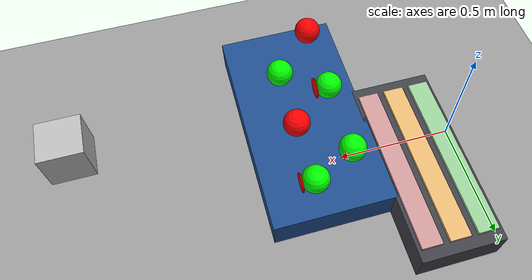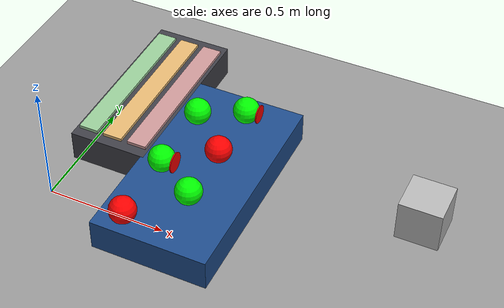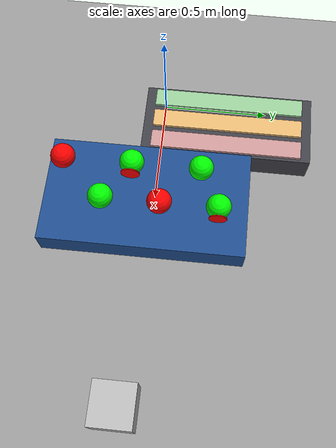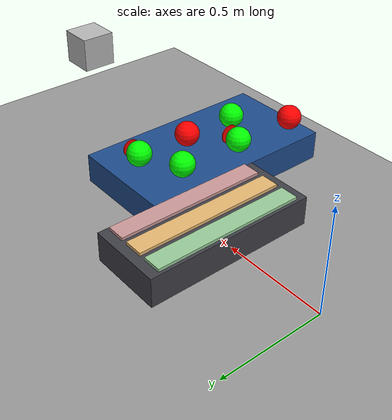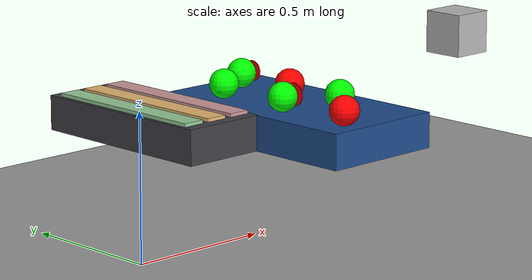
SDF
<?xml version="1.0"?>
<sdf version="1.7">
  <world name="ur5e_apple_rgbd_world">
    <physics name="1ms" type="ignored">
      <max_step_size>0.001</max_step_size>
      <real_time_factor>1.0</real_time_factor>
    </physics>

    <plugin
      filename="ignition-gazebo-physics-system"
      name="gz::sim::systems::Physics"/>

    <plugin
      filename="ignition-gazebo-sensors-system"
      name="gz::sim::systems::Sensors">
      <render_engine>ogre</render_engine>
    </plugin>

    <plugin
      filename="ignition-gazebo-user-commands-system"
      name="gz::sim::systems::UserCommands"/>

    <plugin
      filename="ignition-gazebo-scene-broadcaster-system"
      name="gz::sim::systems::SceneBroadcaster"/>

    <scene>
      <ambient>0.8 0.8 0.8</ambient>
      <background>0.7 0.7 0.7</background>
      <grid>true</grid>
    </scene>

    <gui fullscreen="0">
      <plugin filename="MinimalScene" name="3D View">
        <ignition-gui>
          <title>Apple sorting workstation</title>
          <property type="bool" key="showTitleBar">false</property>
          <property type="string" key="state">docked</property>
        </ignition-gui>
        <engine>ogre</engine>
        <scene>scene</scene>
        <ambient_light>0.8 0.8 0.8</ambient_light>
        <background_color>0.7 0.7 0.7</background_color>
        <camera_pose>-1.4 -1.8 1.5 0 0.45 0.75</camera_pose>
        <camera_clip>
          <near>0.05</near>
          <far>100</far>
        </camera_clip>
      </plugin>

      <plugin filename="GzSceneManager" name="Scene Manager">
        <ignition-gui>
          <property key="state" type="string">floating</property>
          <property key="showTitleBar" type="bool">false</property>
        </ignition-gui>
      </plugin>

      <plugin filename="InteractiveViewControl" name="View control">
        <ignition-gui>
          <property key="state" type="string">floating</property>
          <property key="showTitleBar" type="bool">false</property>
        </ignition-gui>
      </plugin>

      <plugin filename="CameraTracking" name="Camera Tracking">
        <ignition-gui>
          <property key="state" type="string">floating</property>
          <property key="showTitleBar" type="bool">false</property>
        </ignition-gui>
      </plugin>

      <plugin filename="WorldControl" name="World control">
        <ignition-gui>
          <title>World control</title>
          <property type="bool" key="showTitleBar">false</property>
          <property type="bool" key="resizable">false</property>
          <property type="double" key="height">72</property>
          <property type="double" key="width">121</property>
          <property type="string" key="state">floating</property>
          <anchors target="3D View">
            <line own="left" target="left"/>
            <line own="bottom" target="bottom"/>
          </anchors>
        </ignition-gui>
        <play_pause>true</play_pause>
        <step>true</step>
      </plugin>
    </gui>

    <light type="directional" name="sun">
      <pose>0 0 10 0 0 0</pose>
      <diffuse>0.8 0.8 0.8 1</diffuse>
      <specular>0.2 0.2 0.2 1</specular>
      <direction>-0.5 0.1 -0.9</direction>
    </light>

    <model name="ground_plane">
      <static>true</static>
      <pose>0 0 -0.05 0 0 0</pose>

      <link name="link">
        <collision name="collision">
          <geometry>
            <box>
              <size>10 10 0.1</size>
            </box>
          </geometry>
        </collision>

        <visual name="visual">
          <geometry>
            <box>
              <size>10 10 0.1</size>
            </box>
          </geometry>

          <material>
            <ambient>0.6 0.6 0.6 1</ambient>
            <diffuse>0.6 0.6 0.6 1</diffuse>
          </material>
        </visual>
      </link>
    </model>

    <!-- Platform A: compact pick area in front of the UR5e base. -->
    <model name="platform_a_pick_area">
      <static>true</static>
      <pose>0.68 0 0.36 0 0 0</pose>
      <link name="link">
        <collision name="collision">
          <geometry>
            <box>
              <size>0.44 0.82 0.12</size>
            </box>
          </geometry>
        </collision>
        <visual name="visual">
          <geometry>
            <box>
              <size>0.44 0.82 0.12</size>
            </box>
          </geometry>
          <material>
            <ambient>0.12 0.30 0.55 1</ambient>
            <diffuse>0.12 0.30 0.55 1</diffuse>
          </material>
        </visual>
      </link>
    </model>

    <!-- Platform B: sorting area covering the current fixed place poses. -->
    <model name="platform_b_sorting_area">
      <static>true</static>
      <pose>0.32 0.30 0.36 0 0 0</pose>
      <link name="link">
        <collision name="collision">
          <geometry>
            <box>
              <size>0.30 0.70 0.12</size>
            </box>
          </geometry>
        </collision>
        <visual name="base_visual">
          <geometry>
            <box>
              <size>0.30 0.70 0.12</size>
            </box>
          </geometry>
          <material>
            <ambient>0.25 0.25 0.28 1</ambient>
            <diffuse>0.25 0.25 0.28 1</diffuse>
          </material>
        </visual>

        <visual name="ripe_zone">
          <pose>0.10 0 0.066 0 0 0</pose>
          <geometry>
            <box>
              <size>0.075 0.62 0.012</size>
            </box>
          </geometry>
          <material>
            <ambient>0.80 0.60 0.60 1</ambient>
            <diffuse>0.80 0.60 0.60 1</diffuse>
          </material>
        </visual>

        <visual name="half_ripe_zone">
          <pose>0 0 0.066 0 0 0</pose>
          <geometry>
            <box>
              <size>0.075 0.62 0.012</size>
            </box>
          </geometry>
          <material>
            <ambient>0.90 0.72 0.45 1</ambient>
            <diffuse>0.90 0.72 0.45 1</diffuse>
          </material>
        </visual>

        <visual name="unripe_zone">
          <pose>-0.10 0 0.066 0 0 0</pose>
          <geometry>
            <box>
              <size>0.075 0.62 0.012</size>
            </box>
          </geometry>
          <material>
            <ambient>0.60 0.80 0.60 1</ambient>
            <diffuse>0.60 0.80 0.60 1</diffuse>
          </material>
        </visual>
      </link>
    </model>

    <model name="ripe_apple_1">
      <static>false</static>
      <pose>0.56 -0.35 0.47 0 0 0</pose>

      <link name="link">
        <!--
          Keep the dynamic apple at its detection pose while detached.
          The suction joint can still move it after attachment.
        -->
        <gravity>false</gravity>

        <inertial>
          <mass>0.15</mass>
          <inertia>
            <ixx>0.00015</ixx>
            <ixy>0</ixy>
            <ixz>0</ixz>
            <iyy>0.00015</iyy>
            <iyz>0</iyz>
            <izz>0.00015</izz>
          </inertia>
        </inertial>

        <visual name="visual">
          <geometry>
            <sphere>
              <radius>0.05</radius>
            </sphere>
          </geometry>

          <material>
            <ambient>1 0 0 1</ambient>
            <diffuse>1 0 0 1</diffuse>
          </material>
        </visual>
      </link>
    </model>

    <model name="ripe_apple_2">
      <static>false</static>
      <pose>0.72 0.058 0.47 0 0 0</pose>

      <link name="link">
        <gravity>false</gravity>

        <inertial>
          <mass>0.15</mass>
          <inertia>
            <ixx>0.00015</ixx>
            <ixy>0</ixy>
            <ixz>0</ixz>
            <iyy>0.00015</iyy>
            <iyz>0</iyz>
            <izz>0.00015</izz>
          </inertia>
        </inertial>

        <visual name="visual">
          <geometry>
            <sphere>
              <radius>0.05</radius>
            </sphere>
          </geometry>

          <material>
            <ambient>1 0 0 1</ambient>
            <diffuse>1 0 0 1</diffuse>
          </material>
        </visual>
      </link>
    </model>

    <model name="half_ripe_apple_1">
      <static>false</static>
      <pose>0.56 -0.07 0.47 0 0 0</pose>

      <link name="link">
        <gravity>false</gravity>

        <inertial>
          <mass>0.15</mass>
          <inertia>
            <ixx>0.00015</ixx>
            <ixy>0</ixy>
            <ixz>0</ixz>
            <iyy>0.00015</iyy>
            <iyz>0</iyz>
            <izz>0.00015</izz>
          </inertia>
        </inertial>

        <visual name="green_body">
          <geometry>
            <sphere>
              <radius>0.05</radius>
            </sphere>
          </geometry>

          <material>
            <ambient>0 1 0 1</ambient>
            <diffuse>0 1 0 1</diffuse>
          </material>
        </visual>

        <visual name="red_patch">
          <pose>0.052 0 0 0 1.570796 0</pose>
          <geometry>
            <cylinder>
              <radius>0.03873</radius>
              <length>0.004</length>
            </cylinder>
          </geometry>

          <material>
            <ambient>1 0 0 1</ambient>
            <diffuse>1 0 0 1</diffuse>
          </material>
        </visual>
      </link>
    </model>

    <model name="half_ripe_apple_2">
      <static>false</static>
      <pose>0.72 0.292 0.47 0 0 0</pose>

      <link name="link">
        <gravity>false</gravity>

        <inertial>
          <mass>0.15</mass>
          <inertia>
            <ixx>0.00015</ixx>
            <ixy>0</ixy>
            <ixz>0</ixz>
            <iyy>0.00015</iyy>
            <iyz>0</iyz>
            <izz>0.00015</izz>
          </inertia>
        </inertial>

        <visual name="green_body">
          <geometry>
            <sphere>
              <radius>0.05</radius>
            </sphere>
          </geometry>

          <material>
            <ambient>0 1 0 1</ambient>
            <diffuse>0 1 0 1</diffuse>
          </material>
        </visual>

        <visual name="red_patch">
          <pose>0.052 0 0 0 1.570796 0</pose>
          <geometry>
            <cylinder>
              <radius>0.03536</radius>
              <length>0.004</length>
            </cylinder>
          </geometry>

          <material>
            <ambient>1 0 0 1</ambient>
            <diffuse>1 0 0 1</diffuse>
          </material>
        </visual>
      </link>
    </model>

    <model name="unripe_apple_1">
      <static>false</static>
      <pose>0.56 0.21 0.47 0 0 0</pose>

      <link name="link">
        <gravity>false</gravity>

        <inertial>
          <mass>0.15</mass>
          <inertia>
            <ixx>0.00015</ixx>
            <ixy>0</ixy>
            <ixz>0</ixz>
            <iyy>0.00015</iyy>
            <iyz>0</iyz>
            <izz>0.00015</izz>
          </inertia>
        </inertial>

        <visual name="visual">
          <geometry>
            <sphere>
              <radius>0.05</radius>
            </sphere>
          </geometry>

          <material>
            <ambient>0 1 0 1</ambient>
            <diffuse>0 1 0 1</diffuse>
          </material>
        </visual>
      </link>
    </model>

    <model name="unripe_apple_2">
      <static>false</static>
      <pose>0.72 -0.175 0.47 0 0 0</pose>

      <link name="link">
        <gravity>false</gravity>

        <inertial>
          <mass>0.15</mass>
          <inertia>
            <ixx>0.00015</ixx>
            <ixy>0</ixy>
            <ixz>0</ixz>
            <iyy>0.00015</iyy>
            <iyz>0</iyz>
            <izz>0.00015</izz>
          </inertia>
        </inertial>

        <visual name="visual">
          <geometry>
            <sphere>
              <radius>0.05</radius>
            </sphere>
          </geometry>

          <material>
            <ambient>0 1 0 1</ambient>
            <diffuse>0 1 0 1</diffuse>
          </material>
        </visual>
      </link>
    </model>

    <model name="rgbd_camera">
      <static>true</static>
      <pose>1.50 0 0.55 0 0 3.14159</pose>

      <link name="camera_link">
        <visual name="camera_visual">
          <geometry>
            <box>
              <size>0.15 0.15 0.15</size>
            </box>
          </geometry>
        </visual>

        <sensor name="rgbd_sensor" type="rgbd_camera">
          <camera>
            <horizontal_fov>1.047</horizontal_fov>

            <image>
              <width>320</width>
              <height>240</height>
            </image>

            <clip>
              <near>0.1</near>
              <far>10.0</far>
            </clip>
          </camera>

          <always_on>true</always_on>
          <update_rate>30</update_rate>
          <visualize>false</visualize>
          <topic>rgbd_camera</topic>
        </sensor>
      </link>
    </model>
  </world>
</sdf>
